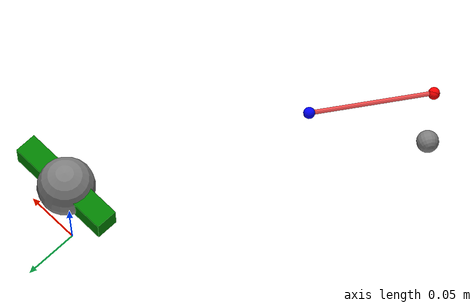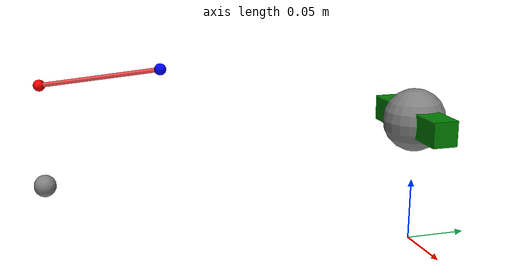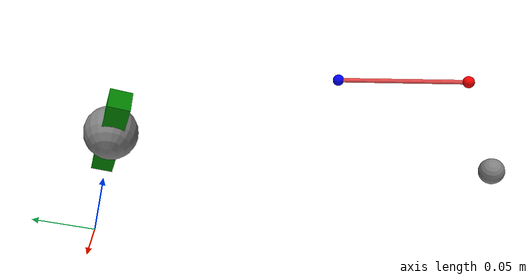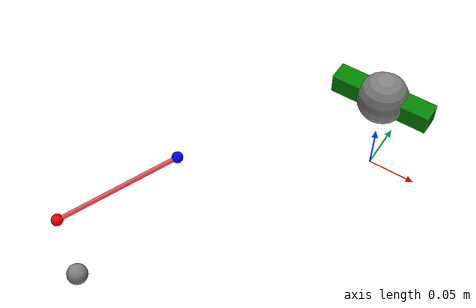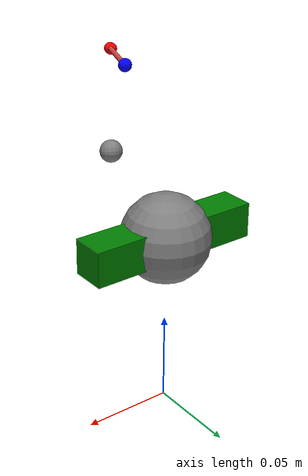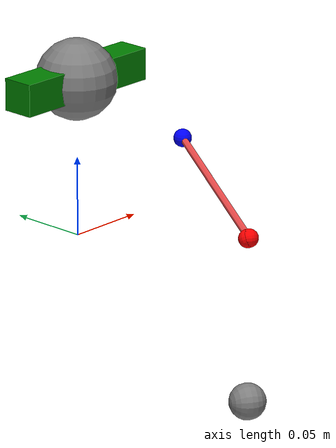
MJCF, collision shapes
<?xml version='1.0' encoding='utf-8'?>
<mujoco model="Hexapod_V2">
  <compiler angle="radian" meshdir="./assets" />

  <option gravity="0 0 -9.81" timestep="0.005" iterations="100" ls_iterations="50">
    <flag contact="enable" gravity="enable" />
  </option>

  <default>
    <default class="spider">
      <joint damping="1" armature="0.1" />
      <default class="calf_motor">
        <joint axis="0 0 1" range="-1.785398 1.785398" />
        <general ctrlrange="-0.75 0.75" gainprm="12.5 0 0" biasprm="0 -12.5 -0.075" />
      </default>
      <default class="parallel_top">
        <joint axis="0 1 0" range="-0.785398 0.785398" />
        <general ctrlrange="-0.4 0.625" gainprm="20 0 0" biasprm="0 -20 -0.07" />
      </default>
      <default class="last_link">
        <joint axis="0 0 1" range="-0.785398 0.785398" />
      </default>
      <default class="parallel_bottom">
        <joint axis="0 1 0" range="-0.785398 0.785398" />
      </default>
      <default class="visual">
        <geom type="mesh" contype="0" conaffinity="0" group="1" />
      </default>
      <default class="collision">
        <geom group="0" contype="1" conaffinity="1" />
        <default class="body_collision">
          <geom type="box" />
        </default>
        <default class="joint_collision">
          <geom type="sphere" size="0.025" />
        </default>
        <default class="link_collision">
          <geom type="capsule" size="0.01" />
        </default>
        <default class="foot">
          <geom type="sphere" size="0.01" priority="1"
                condim="6"
                solimp="0.9 0.97 0.001"
                friction="0.8 0.02 0.01"
                margin="0.002" />
        </default>
      </default>
    </default>
  </default>

  <asset>
    <mesh name="base_link" file="base_link.STL" />
    <mesh name="calf_motor_link_leg_1" file="calf_motor_link_leg_1.STL" />
    <mesh name="parallel_link_top_leg_1" file="parallel_link_top_leg_1.STL" />
    <mesh name="last_link_leg_1" file="last_link_leg_1.STL" />
    <mesh name="parallel_link_bottom_leg_1" file="parallel_link_bottom_leg_1.STL" />
  </asset>

  <worldbody>
    <body name="base_link" pos="0 0 0.1" quat="1 0 0 0" childclass="spider">\

    <inertial pos="0 0 0" mass="1.75" diaginertia="0.1 0.1 0.1" />
    <joint type="free" />

    <geom type="mesh" class="visual" mesh="base_link" rgba="0.752941 0.752941 0.752941 1" />

    <geom class="body_collision" size="0.05 0.01 0.01" rgba="0 0.5 0 0" />
    <site name="imu" pos="0 0 0" type="sphere" size="0.025" />

    <body name="calf_motor_link_leg_1" pos="-0.06063 -0.10479 0" quat="-0.502294 -2.12132e-06 0 0.864697">
      <inertial pos="0.0396371 6.53548e-05 0.0269162" quat="0.2819 0.641134 0.656622 0.279869" mass="0.07" diaginertia="1.59253e-05 1.43284e-05 1.01106e-05" />
      <joint name="calf_motor_link_joint_leg_1" class="calf_motor" range="-0.75 0.75" />

      <geom type="mesh" class="visual" mesh="calf_motor_link_leg_1" rgba="0.752941 0.752941 0.752941 1" />

      <body name="parallel_link_top_leg_1" pos="0.05696 2.8193e-05 0.032062" quat="0.999598 -7.01931e-06 0.0283637 0.000247375">
        <inertial pos="0.0574213 -0.000598283 0.00853065" quat="0.0011598 0.561906 0.000915177 0.8272" mass="0.12" diaginertia="5.81563e-05 5.58283e-05 8.0324e-06" />
        <joint name="parallel_link_top_joint_leg_1" class="parallel_top" range="-0.4 0.625" />

        <geom type="mesh" class="visual" mesh="parallel_link_top_leg_1" rgba="0.752941 0.752941 0.752941 1" />

        <site name="spring_site2_leg_1" type="sphere" size="0.005" pos="0.0325 0 0.0015" rgba="0 0 1 1" />

        <body name="last_link_leg_1" pos="0.14095 0.000625 0.03916" quat="-0.0200588 0.0200535 -0.706824 -0.706821">
          <inertial pos="5.42171e-09 -0.0445221 -1.38847e-05" quat="0.707214 0.707 0 0" mass="0.021" diaginertia="1.99548e-05 1.94298e-05 5.85385e-07" />
          <joint name="last_link_joint_leg_1" class="last_link" />

          <geom type="mesh" class="visual" mesh="last_link_leg_1" rgba="0.647059 0.647059 0.647059 1" />

          <site name="site1_leg_1" type="sphere" size="0.005" pos="0 -0.05 0" rgba="1 0 0 1" />
          <site name="spring_site1_leg_1" type="sphere" size="0.005" pos="0 -0.05 0" rgba="1 0 0 1" />

          <geom name="foot_1" class="foot" pos="0 -0.1415 0" />
          <site name="foot_site_1" pos="0 -0.1415 0" type="sphere" size="0.005" quat="0.707107 0.707107 0 0" rgba="0.64706 0.64706 0.64706 1" />
        </body>
      </body>

      <body name="parallel_link_bottom_leg_1" pos="0.05696 2.8193e-05 -0.017938" quat="0.000233943 0.313076 7.7119e-05 -0.949728">
        <inertial pos="-0.0683401 -0.000625 -0.0307334" quat="0.593746 0.384012 0.384012 0.593746" mass="0.011" diaginertia="1.70954e-05 1.69661e-05 2.95998e-07" />
        <joint name="parallel_link_bottom_joint_leg_1" class="parallel_bottom" />

        <geom type="mesh" class="visual" mesh="parallel_link_bottom_leg_1" rgba="0.231373 0.380392 0.705882 1" />

        <site name="site2_leg_1" type="sphere" size="0.005" pos="-0.133 0 -0.06" rgba="1 0 0 1" />
      </body>
    </body>
    </body>

  </worldbody>

  <equality>
    <connect name="kinematic_link_leg_1" active="true" site1="site1_leg_1" site2="site2_leg_1" solref=".01 1" solimp=".95 .99 .01" />
  </equality>

  <actuator>

    <position name="calf_motor_actuator_leg_1" joint="calf_motor_link_joint_leg_1" gear="1" ctrlrange="-0.75 0.75" kp="12.5" kv="0.075" />
    <position name="parallel_link_top_actuator_leg_1" joint="parallel_link_top_joint_leg_1" gear="1" ctrlrange="-0.4 0.625" kp="20" kv="0.07" />
  </actuator>

  <sensor>

    <gyro site="imu" name="imu_ang_vel" />
    <velocimeter site="imu" name="imu_lin_vel" />
  </sensor>

  <tendon>
    <spatial range="0 .2" limited="true" width=".002" rgba=".95 .3 .3 1" springlength=".12" stiffness="1000">
    <site site="spring_site1_leg_1" />
    <site site="spring_site2_leg_1" />
    </spatial>
  </tendon>

</mujoco>
